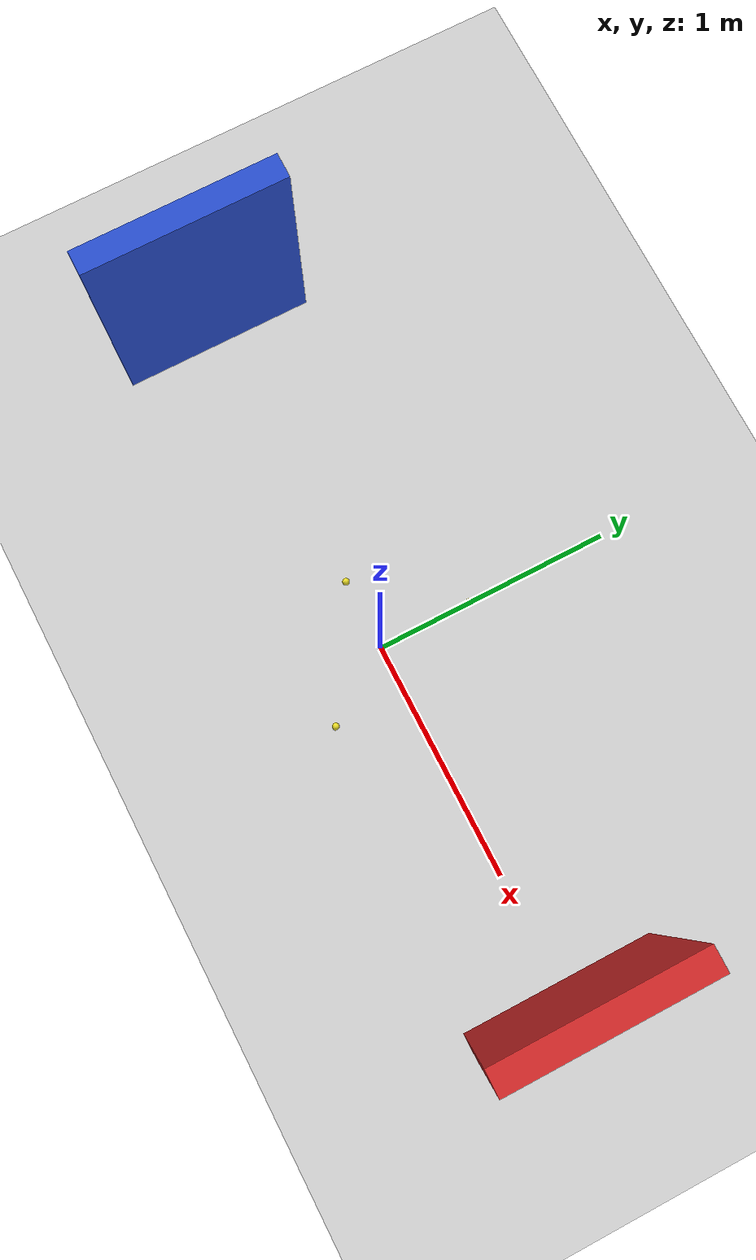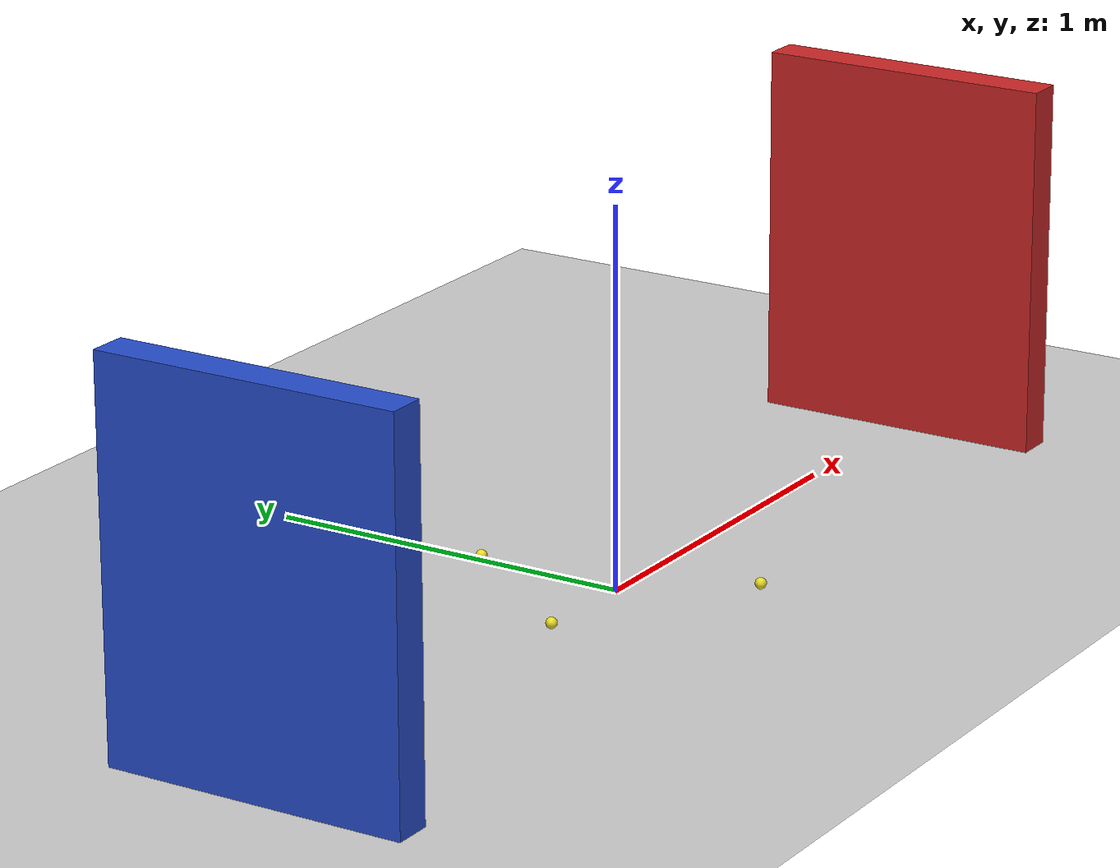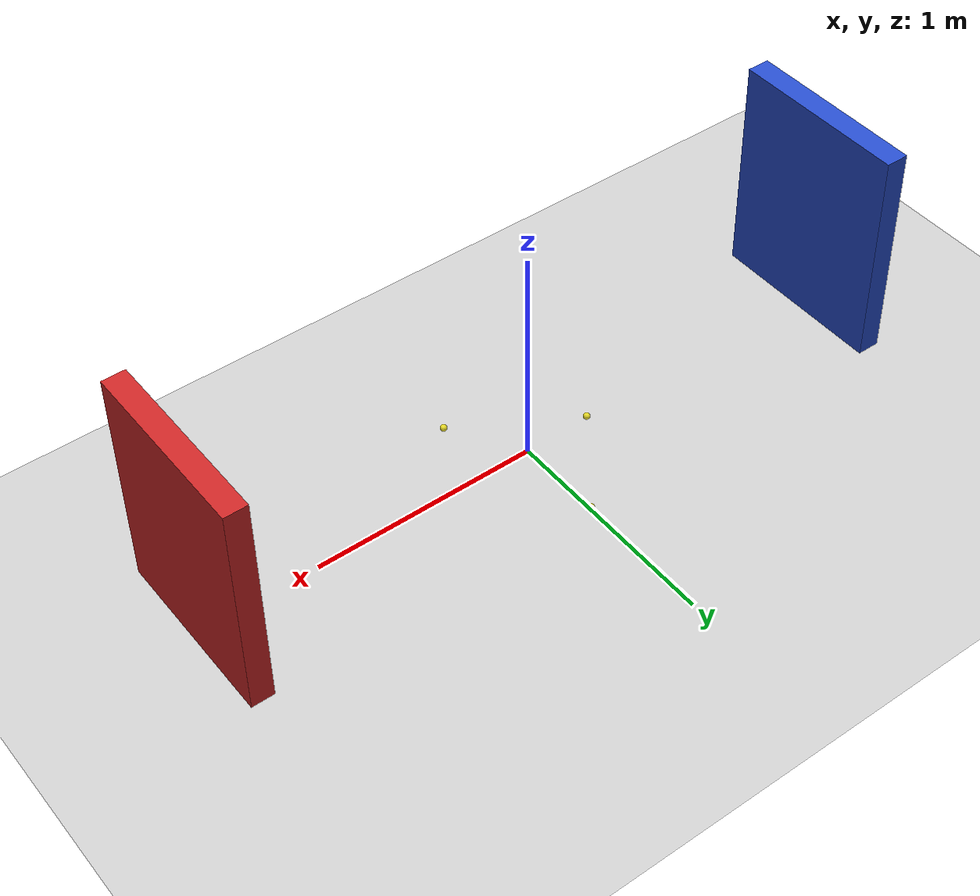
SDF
<?xml version="1.0" ?>
<sdf version="1.8">
  <world name="ugv_slam_world">
    <!-- Gravity and defaults -->
    <gravity>0 0 -9.81</gravity>

    <!-- Ground & sun from default models -->
    <include>
      <uri>model://ground_plane</uri>
    </include>

    <include>
      <uri>model://sun</uri>
    </include>

    <!-- LEFT GOAL (static, blue) -->
    <model name="goal_left">
      <static>true</static>
      <!-- x y z roll pitch yaw -->
      <!-- 1 m tall, 0.8 m wide, 0.1 m deep, centered at x = -1.5 -->
      <pose>-1.5 0 0.5 0 0 0</pose>
      <link name="goal_left_link">
        <collision name="collision">
          <geometry>
            <box>
              <size>0.1 0.8 1.0</size>
            </box>
          </geometry>
        </collision>
        <visual name="visual">
          <geometry>
            <box>
              <size>0.1 0.8 1.0</size>
            </box>
          </geometry>
          <material>
            <script>
              <uri>file://media/materials/scripts/gazebo.material</uri>
              <name>Gazebo/Blue</name>
            </script>
          </material>
        </visual>
      </link>
    </model>

    <!-- RIGHT GOAL (static, red) -->
    <model name="goal_right">
      <static>true</static>
      <pose>1.5 0 0.5 0 0 0</pose>
      <link name="goal_right_link">
        <collision name="collision">
          <geometry>
            <box>
              <size>0.1 0.8 1.0</size>
            </box>
          </geometry>
        </collision>
        <visual name="visual">
          <geometry>
            <box>
              <size>0.1 0.8 1.0</size>
            </box>
          </geometry>
          <material>
            <script>
              <uri>file://media/materials/scripts/gazebo.material</uri>
              <name>Gazebo/Red</name>
            </script>
          </material>
        </visual>
      </link>
    </model>

    <!-- BALL TEMPLATE:
         radius = 0.015 m (diameter 0.03 m), dynamic -->
    <model name="ball_1">
      <static>false</static>
      <pose>0.0 0.4 0.015 0 0 0</pose>
      <link name="ball_1_link">
        <inertial>
          <mass>0.02</mass>
        </inertial>
        <collision name="collision">
          <geometry>
            <sphere>
              <radius>0.015</radius>
            </sphere>
          </geometry>
        </collision>
        <visual name="visual">
          <geometry>
            <sphere>
              <radius>0.015</radius>
            </sphere>
          </geometry>
          <material>
            <script>
              <uri>file://media/materials/scripts/gazebo.material</uri>
              <name>Gazebo/Yellow</name>
            </script>
          </material>
        </visual>
      </link>
    </model>

    <model name="ball_2">
      <static>false</static>
      <pose>0.2 -0.3 0.015 0 0 0</pose>
      <link name="ball_2_link">
        <inertial>
          <mass>0.02</mass>
        </inertial>
        <collision name="collision">
          <geometry>
            <sphere>
              <radius>0.015</radius>
            </sphere>
          </geometry>
        </collision>
        <visual name="visual">
          <geometry>
            <sphere>
              <radius>0.015</radius>
            </sphere>
          </geometry>
          <material>
            <script>
              <uri>file://media/materials/scripts/gazebo.material</uri>
              <name>Gazebo/Yellow</name>
            </script>
          </material>
        </visual>
      </link>
    </model>

    <model name="ball_3">
      <static>false</static>
      <pose>-0.3 0.0 0.015 0 0 0</pose>
      <link name="ball_3_link">
        <inertial>
          <mass>0.02</mass>
        </inertial>
        <collision name="collision">
          <geometry>
            <sphere>
              <radius>0.015</radius>
            </sphere>
          </geometry>
        </collision>
        <visual name="visual">
          <geometry>
            <sphere>
              <radius>0.015</radius>
            </sphere>
          </geometry>
          <material>
            <script>
              <uri>file://media/materials/scripts/gazebo.material</uri>
              <name>Gazebo/Yellow</name>
            </script>
          </material>
        </visual>
      </link>
    </model>

    <!-- Optional: GUI camera starting pose -->
    <gui fullscreen="0">
      <camera name="user_camera">
        <pose>0 0 5 0 1.57 0</pose>
      </camera>
    </gui>

  </world>
</sdf>
